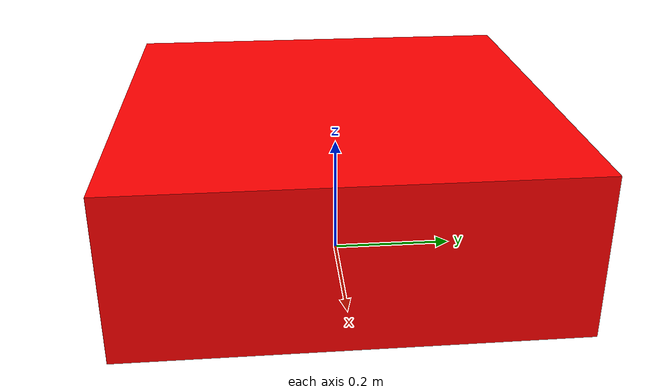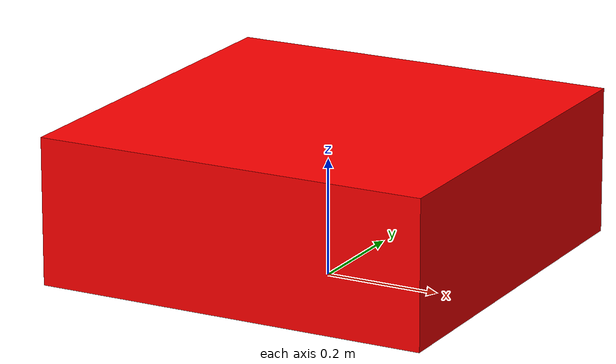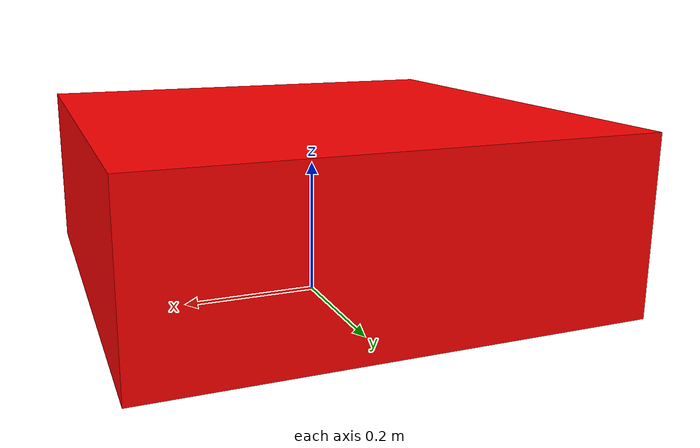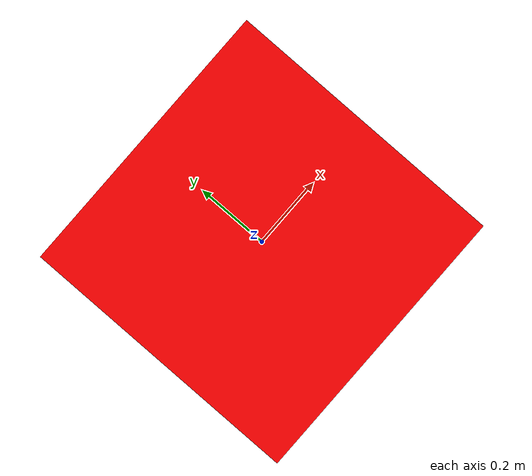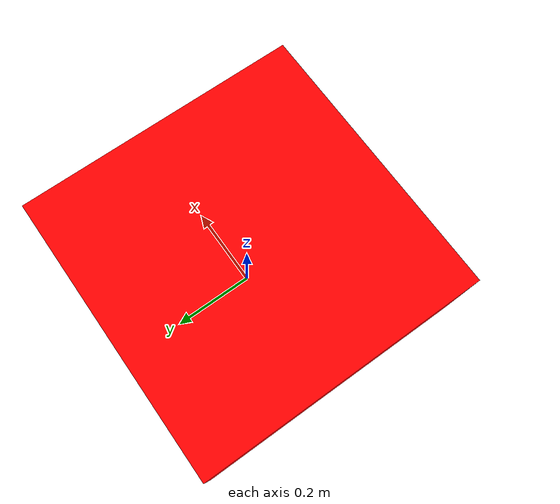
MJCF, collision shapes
<mujoco model="Palletrone">
  <compiler angle="radian"/>

  <asset>
    <mesh name="body_mesh"       file="BODY.stl"/>
    <mesh name="servo_prop_mesh" file="PROP.stl"/>
  </asset>

  <worldbody>
    <body name="base" pos="0 0 0.145">
      <freejoint name="root"/>
      <inertial pos="0 0 0" quat="1 0 0 0" mass="4.00" diaginertia="0.360702 0.360702 0.660702"/>
      <geom name="base_vis" type="mesh" mesh="body_mesh" rgba="0.1 0.1 0.1 1" contype="0" conaffinity="0"/>
      <geom name="base_col" type="box" size="0.34 0.34 0.125" pos="0 0 0.01"
            rgba="1 0 0 0.25" contype="1" conaffinity="1" condim="6"
            friction="5.0 0.1 0.1"
            solref="-2000 -40"
            solimp="0.99 0.999 0.0001"
            margin="0.002"
            group="5"/>

      <site name="imu" pos="0 0 0" quat="1 0 0 0"/>

      <body name="servo1" pos="0.148492 0.148492 0.145" quat="0.9238795 0 0 0.3826834">
        <joint name="j_servo1" type="hinge" axis="1 0 0" pos="0 0 -0.075" limited="true" range="-1.5708 1.5708" damping="0.01" armature="0.01"/>
        <body name="prop1_body" pos="0 0 -0.075">
          <geom name="servo1_vis" type="mesh" mesh="servo_prop_mesh" mass="1e-9"
                quat="0.7071068 0 0 0.7071068"
                rgba="0.85 0.55 0.0 1" contype="0" conaffinity="0" group="1"/>
          <site name="prop1_site" pos="0 0 0" size="0.01" type="sphere"/>
        </body>
      </body>

      <body name="servo2" pos="-0.148492 0.148492 0.145" quat="0.3826834 0 0 0.9238795">
        <joint name="j_servo2" type="hinge" axis="1 0 0" pos="0 0 -0.075" limited="true" range="-1.5708 1.5708" damping="0.01" armature="0.01"/>
        <body name="prop2_body" pos="0 0 -0.075">
          <geom name="servo2_vis" type="mesh" mesh="servo_prop_mesh" mass="1e-9"
                quat="0.7071068 0 0 0.7071068"
                rgba="0.85 0.55 0.0 1" contype="0" conaffinity="0" group="2"/>
          <site name="prop2_site" pos="0 0 0" size="0.01" type="sphere"/>
        </body>
      </body>

      <body name="servo3" pos="-0.148492 -0.148492 0.145" quat="0.3826834 0 0 -0.9238795">
        <joint name="j_servo3" type="hinge" axis="1 0 0" pos="0 0 -0.075" limited="true" range="-1.5708 1.5708" damping="0.01" armature="0.01"/>
        <body name="prop3_body" pos="0 0 -0.075">
          <geom name="servo3_vis" type="mesh" mesh="servo_prop_mesh" mass="1e-9"
                quat="0.7071068 0 0 0.7071068"
                rgba="0.85 0.55 0.0 1" contype="0" conaffinity="0" group="3"/>
          <site name="prop3_site" pos="0 0 0" size="0.01" type="sphere"/>
        </body>
      </body>

      <body name="servo4" pos="0.148492 -0.148492 0.145" quat="0.9238795 0 0 -0.3826834">
        <joint name="j_servo4" type="hinge" axis="1 0 0" pos="0 0 -0.075" limited="true" range="-1.5708 1.5708" damping="0.01" armature="0.01"/>
        <body name="prop4_body" pos="0 0 -0.075">
          <geom name="servo4_vis" type="mesh" mesh="servo_prop_mesh" mass="1e-9"
                quat="0.7071068 0 0 0.7071068"
                rgba="0.85 0.55 0.0 1" contype="0" conaffinity="0" group="4"/>
          <site name="prop4_site" pos="0 0 0" size="0.01" type="sphere"/>
        </body>
      </body>
    </body>
  </worldbody>

  <actuator>
    <general name="BLDC1" site="prop1_site" gear="0 0 1 0 0  0.02"  ctrlrange="0 50"/>
    <general name="BLDC2" site="prop2_site" gear="0 0 1 0 0 -0.02"  ctrlrange="0 50"/>
    <general name="BLDC3" site="prop3_site" gear="0 0 1 0 0  0.02"  ctrlrange="0 50"/>
    <general name="BLDC4" site="prop4_site" gear="0 0 1 0 0 -0.02"  ctrlrange="0 50"/>

    <position name="servo1_pos" joint="j_servo1" kp="20" kv="2.0" ctrlrange="-1.5708 1.5708"/>
    <position name="servo2_pos" joint="j_servo2" kp="20" kv="2.0" ctrlrange="-1.5708 1.5708"/>
    <position name="servo3_pos" joint="j_servo3" kp="20" kv="2.0" ctrlrange="-1.5708 1.5708"/>
    <position name="servo4_pos" joint="j_servo4" kp="20" kv="2.0" ctrlrange="-1.5708 1.5708"/>
  </actuator>

  <sensor>
    <framequat   name="body_quat"   objtype="site" objname="imu"/>
    <gyro        name="body_gyro"   site="imu"/>
    <framepos    name="base_pos"    objtype="body" objname="base"/>
    <framelinvel name="base_linvel" objtype="body" objname="base"/>

    <jointpos name="servo1_angle" joint="j_servo1"/>
    <jointpos name="servo2_angle" joint="j_servo2"/>
    <jointpos name="servo3_angle" joint="j_servo3"/>
    <jointpos name="servo4_angle" joint="j_servo4"/>
  </sensor>
</mujoco>
